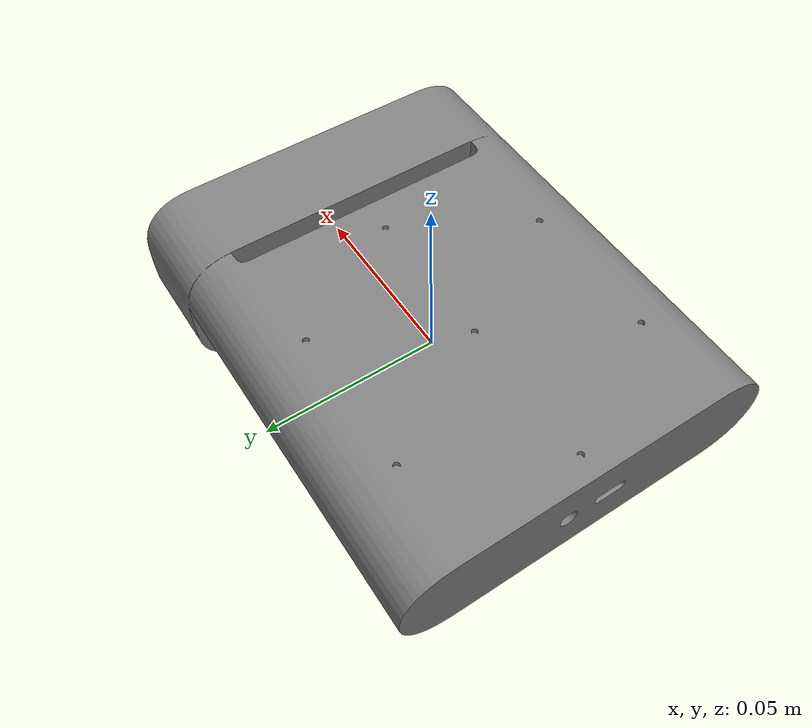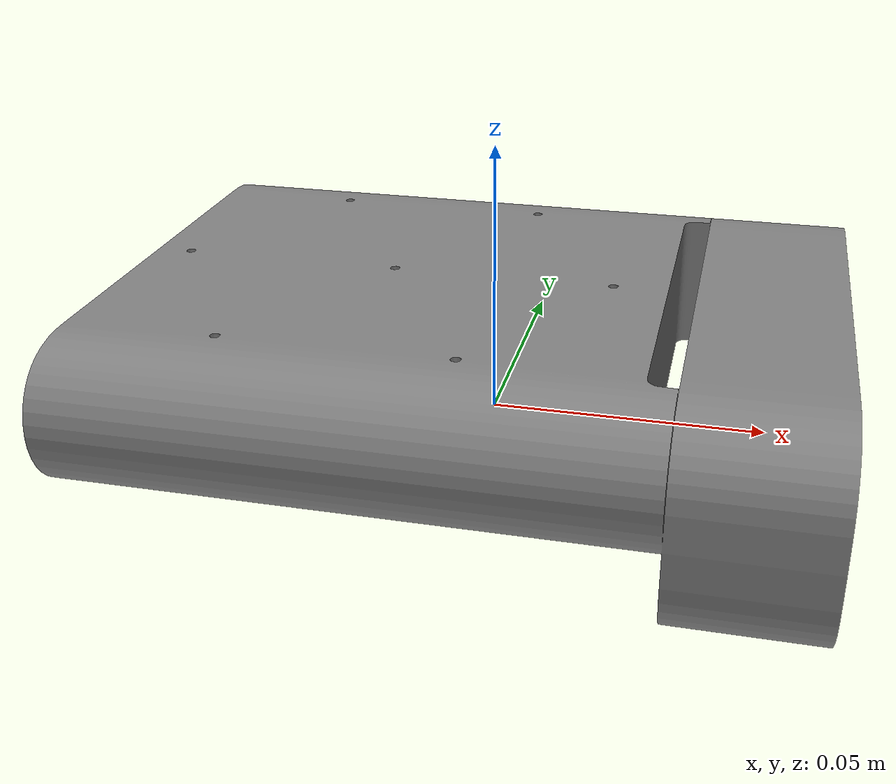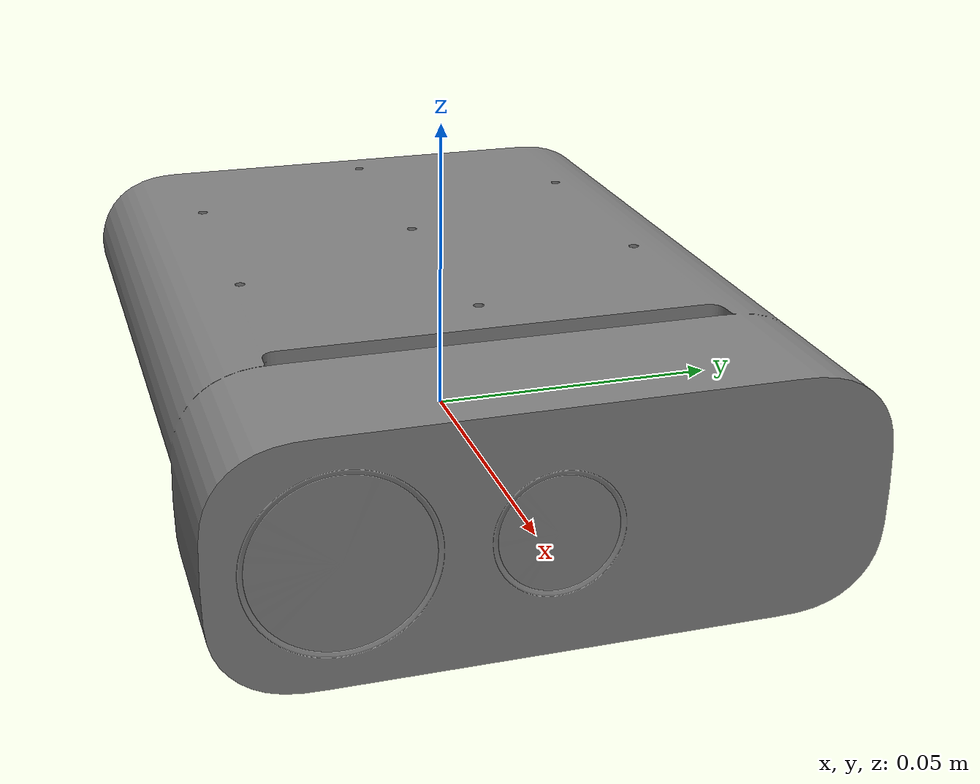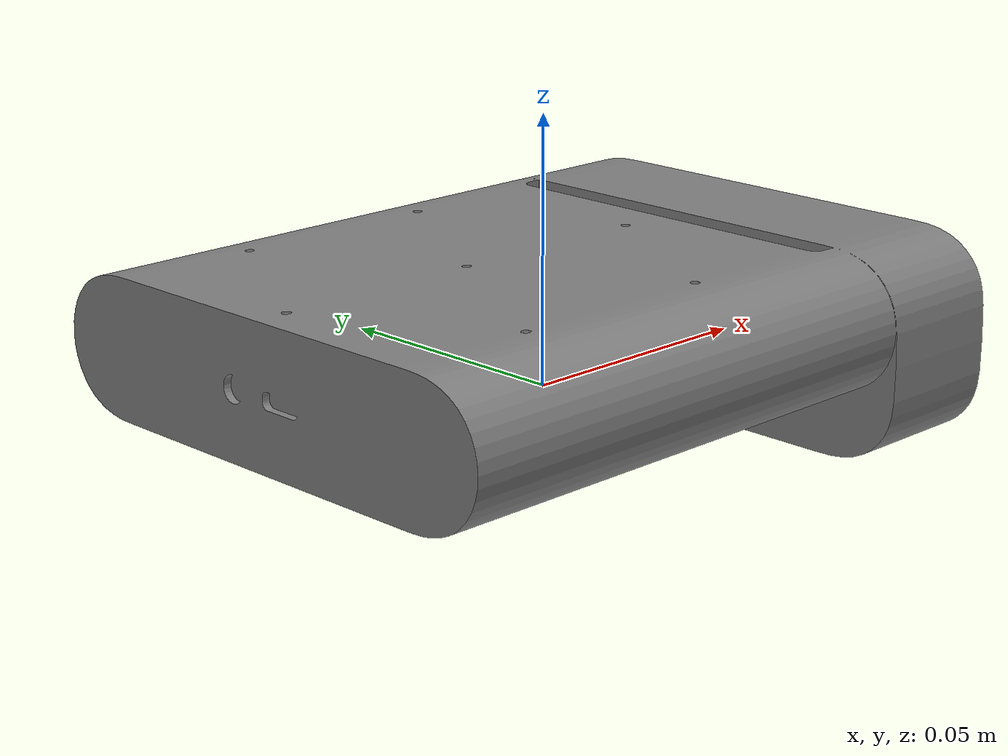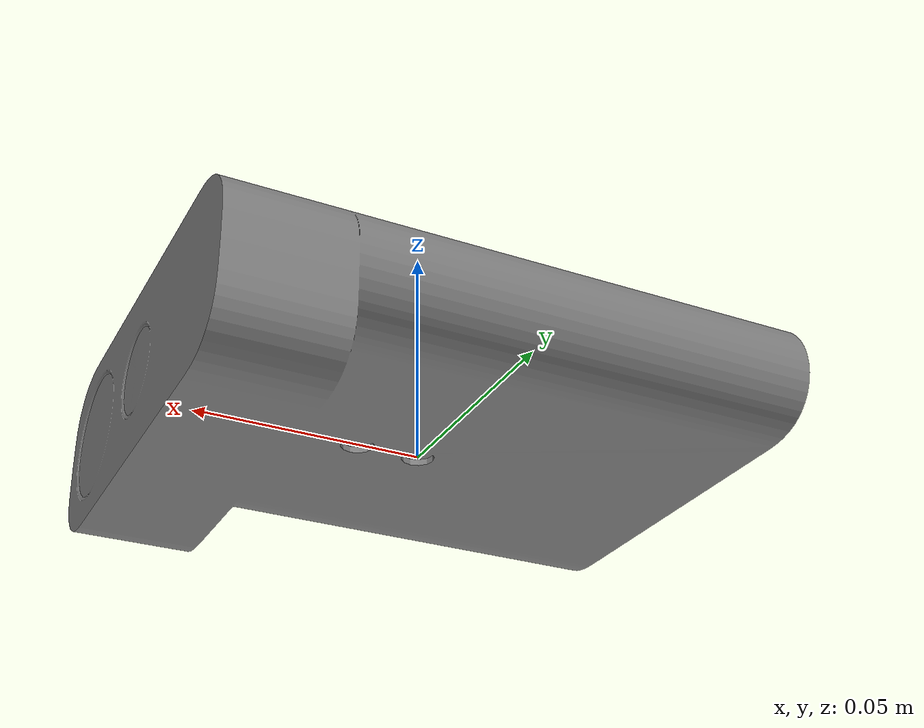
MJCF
<mujoco model="kinect">
  <compiler meshdir="assets" fitaabb="true"/>

  <visual>
    <global azimuth="90" elevation="-90"/>
  </visual>

  <default>
    <default class="kinect">
      <material specular="0" shininess="0.25"/>
      <default class="visual">
        <geom group="2" type="mesh" contype="0" conaffinity="0" mass="0"/>
      </default>
      <default class="collision">
        <geom group="3" type="mesh" mass="0"/>
      </default>
    </default>
  </default>

  <asset>
    <mesh name="visual" file="visual.stl"/>
    <mesh name="collision" file="collision.stl"/>
  </asset>

  <worldbody>
    <light pos="0 0 1.5" dir="0 0 -1" directional="true"/>
    <body name="azure_base" childclass="kinect">
      <geom mesh="visual" mass="0.44" class="visual"/>
      <geom class="collision" type="capsule" mesh="collision"/>
    </body>
  </worldbody>
</mujoco>
